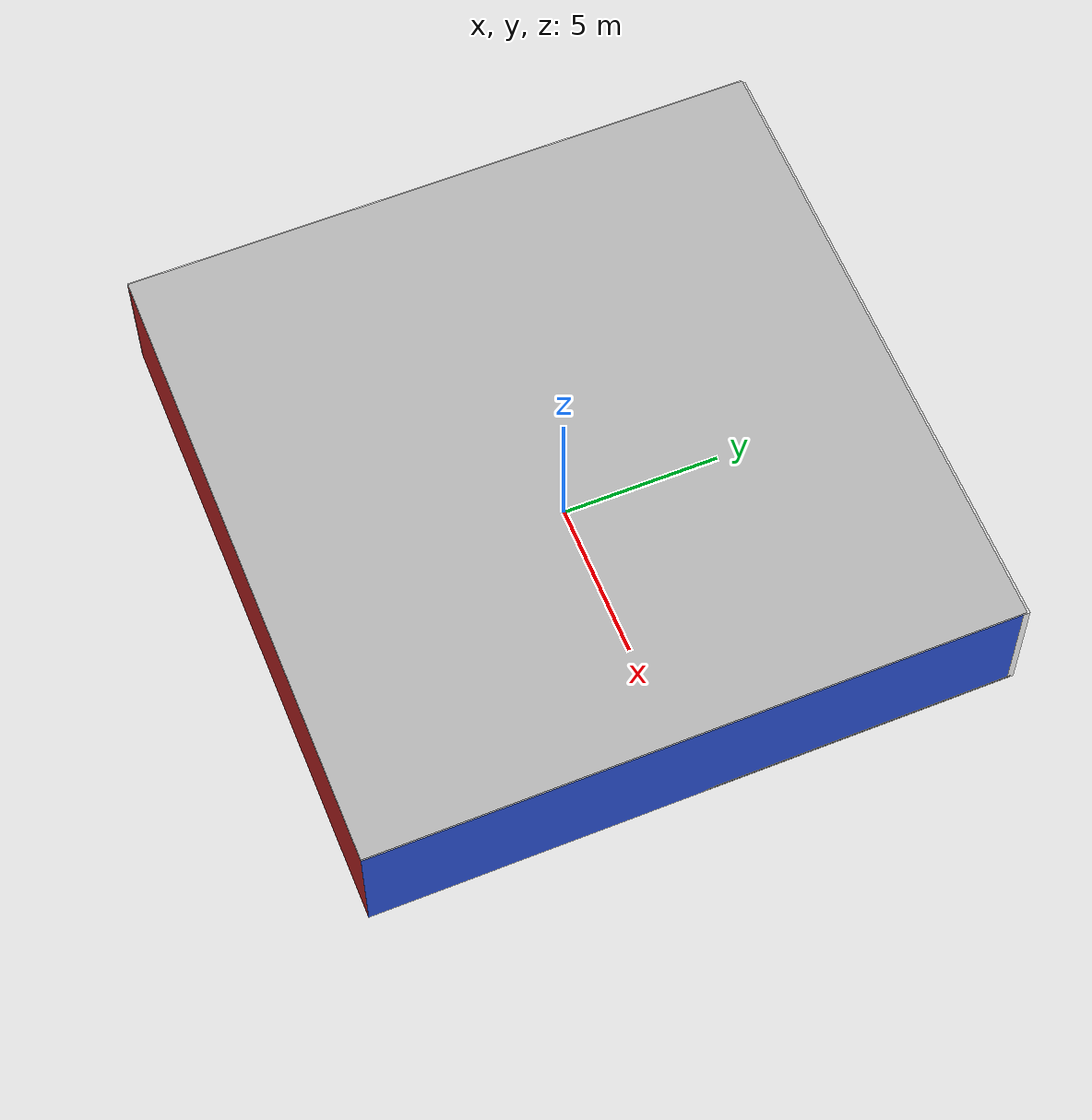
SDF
<sdf version="1.4">
 <world name="default">
  <physics type="ode">
   <max_step_size>0.001</max_step_size>
   <real_time_factor>1</real_time_factor>
   <real_time_update_rate>1000</real_time_update_rate>
   <gravity>0 0 -9.8</gravity>
  </physics>
  <scene><ambient>0.4 0.4 0.4 1</ambient><background>0.7 0.7 0.7 1</background><shadows>1</shadows></scene>
  <model name="Surrounding">
   <static>1</static>
   <link name="Ceiling">
    <collision name="Ceiling_Collision"><geometry><box><size>20 20 0.1</size></box></geometry></collision>
    <visual name="Ceiling_Visual">
     <geometry><box><size>20 20 0.1</size></box></geometry>
     <material>
      <script><uri>file://media/materials/scripts/gazebo.material</uri><name>Gazebo/Pioneer2Body</name></script>
     </material>
    </visual>
    <pose>0 0 4.05 0 0 0</pose>
   </link>
   <link name="Wall_South">
    <collision name="Wall_South_Collision">
     <geometry><box><size>20 0 4</size></box></geometry>
     <pose>0 0 2 0 -0 0</pose>
    </collision>
    <visual name="Wall_South_Visual">
     <pose>0 0 2 0 -0 0</pose>
     <geometry><box><size>20 0 4</size></box></geometry>
     <material>
      <script><uri>file://media/materials/scripts/gazebo.material</uri><name>Gazebo/RedGlow</name></script>
     </material>
    </visual>
    <velocity_decay><linear>0</linear><angular>0</angular></velocity_decay>
    <pose>0 -10 0 0 -0 0</pose>
   </link>
   <link name="Wall_East">
    <collision name="Wall_21_Collision">
     <geometry><box><size>20 0 4</size></box></geometry>
     <pose>0 0 2 0 -0 0</pose>
    </collision>
    <visual name="Wall_21_Visual">
     <pose>0 0 2 0 -0 0</pose>
     <geometry><box><size>20 0 4</size></box></geometry>
     <material>
      <script><uri>file://media/materials/scripts/gazebo.material</uri><name>Gazebo/Blue</name></script>
     </material>
    </visual>
    <velocity_decay><linear>0</linear><angular>0</angular></velocity_decay>
    <pose>10 0 0 0 -0 1.5708</pose>
   </link>
   <link name="Wall_North">
    <collision name="Wall_22_Collision">
     <geometry><box><size>20 0.2 4</size></box></geometry>
     <pose>0 0 2 0 -0 0</pose>
    </collision>
    <visual name="Wall_22_Visual">
     <pose>0 0 2 0 -0 0</pose>
     <geometry><box><size>20 0.2 4</size></box></geometry>
     <material>
      <script><uri>file://media/materials/scripts/gazebo.material</uri><name>Gazebo/WhiteGlow</name></script>
     </material>
    </visual>
    <velocity_decay><linear>0</linear><angular>0</angular></velocity_decay>
    <pose>0 10 0 0 -0 0</pose>
   </link>
   <link name="Wall_West">
    <collision name="Wall_23_Collision">
     <geometry><box><size>20 0.2 4</size></box></geometry>
     <pose>0 0 2 0 -0 0</pose>
    </collision>
    <visual name="Wall_23_Visual">
     <pose>0 0 2 0 -0 0</pose>
     <geometry><box><size>20 0.2 4</size></box></geometry>
     <material>
      <script><uri>file://media/materials/scripts/gazebo.material</uri><name>Gazebo/WhiteGlow</name></script>
     </material>
    </visual>
    <velocity_decay><linear>0</linear><angular>0</angular></velocity_decay>
    <pose>-10 0 0 0 0 -1.5708</pose>
   </link>
   <link name="Ground_link">
    <collision name="collision">
     <pose>0 0 .05 0 -0 0</pose>
     <geometry><box><size>20 20 0.1</size></box></geometry>
    </collision>
    <visual name="visual">
     <pose>0 0 .05 0 -0 0</pose>
     <geometry><box><size>20 20 0.1</size></box></geometry>
     <material>
      <script><uri>file://media/materials/scripts/gazebo.material</uri><name>Gazebo/FlatBlack</name></script>
     </material>
    </visual>
   </link>
   <static>1</static>
  </model>
  <spherical_coordinates>
   <surface_model>EARTH_WGS84</surface_model>
   <latitude_deg>0</latitude_deg>
   <longitude_deg>0</longitude_deg>
   <elevation>0</elevation>
   <heading_deg>0</heading_deg>
  </spherical_coordinates>
  <light name="lightball_0" type="diffuse">
   <diffuse>0.8 0.8 0.8 1</diffuse>
   <specular>0.2 0.2 0.2 1</specular>
   <attenuation>
    <range>100</range>
    <constant>0.7</constant>
    <linear>0.01</linear>
    <quadratic>0.001</quadratic>
   </attenuation>
   <direction>-0.5 0.1 -0.9</direction>
   <pose>1.59647423011 9.35692064862 3.89760356923 0 0 0</pose>
  </light>
  <light name="lightball_1" type="diffuse">
   <diffuse>0.8 0.8 0.8 1</diffuse>
   <specular>0.2 0.2 0.2 1</specular>
   <attenuation>
    <range>100</range>
    <constant>0.7</constant>
    <linear>0.01</linear>
    <quadratic>0.001</quadratic>
   </attenuation>
   <direction>-0.5 0.1 -0.9</direction>
   <pose>-6.578877243 -7.68998178136 1.42099982966 0 0 0</pose>
  </light>
  <light name="lightball_2" type="diffuse">
   <diffuse>0.8 0.8 0.8 1</diffuse>
   <specular>0.2 0.2 0.2 1</specular>
   <attenuation>
    <range>100</range>
    <constant>0.7</constant>
    <linear>0.01</linear>
    <quadratic>0.001</quadratic>
   </attenuation>
   <direction>-0.5 0.1 -0.9</direction>
   <pose>-5.44575222678 2.24243119048 3.02413220814 0 0 0</pose>
  </light>
  <light name="lightball_3" type="diffuse">
   <diffuse>0.8 0.8 0.8 1</diffuse>
   <specular>0.2 0.2 0.2 1</specular>
   <attenuation>
    <range>100</range>
    <constant>0.7</constant>
    <linear>0.01</linear>
    <quadratic>0.001</quadratic>
   </attenuation>
   <direction>-0.5 0.1 -0.9</direction>
   <pose>-9.17867653342 3.51947736398 1.54446070365 0 0 0</pose>
  </light>
  <light name="lightball_4" type="diffuse">
   <diffuse>0.8 0.8 0.8 1</diffuse>
   <specular>0.2 0.2 0.2 1</specular>
   <attenuation>
    <range>100</range>
    <constant>0.7</constant>
    <linear>0.01</linear>
    <quadratic>0.001</quadratic>
   </attenuation>
   <direction>-0.5 0.1 -0.9</direction>
   <pose>-5.75129906401 2.7726476824 2.002891033 0 0 0</pose>
  </light>
  <light name="lightball_5" type="diffuse">
   <diffuse>0.8 0.8 0.8 1</diffuse>
   <specular>0.2 0.2 0.2 1</specular>
   <attenuation>
    <range>100</range>
    <constant>0.7</constant>
    <linear>0.01</linear>
    <quadratic>0.001</quadratic>
   </attenuation>
   <direction>-0.5 0.1 -0.9</direction>
   <pose>-4.18728789877 2.61482872137 1.14112226709 0 0 0</pose>
  </light>
  <light name="lightball_6" type="diffuse">
   <diffuse>0.8 0.8 0.8 1</diffuse>
   <specular>0.2 0.2 0.2 1</specular>
   <attenuation>
    <range>100</range>
    <constant>0.7</constant>
    <linear>0.01</linear>
    <quadratic>0.001</quadratic>
   </attenuation>
   <direction>-0.5 0.1 -0.9</direction>
   <pose>1.37170431837 -3.3580925065 2.98329609587 0 0 0</pose>
  </light>
  <light name="lightball_7" type="diffuse">
   <diffuse>0.8 0.8 0.8 1</diffuse>
   <specular>0.2 0.2 0.2 1</specular>
   <attenuation>
    <range>100</range>
    <constant>0.7</constant>
    <linear>0.01</linear>
    <quadratic>0.001</quadratic>
   </attenuation>
   <direction>-0.5 0.1 -0.9</direction>
   <pose>0.477297066149 4.0093962366 3.16545986112 0 0 0</pose>
  </light>
  <light name="lightball_8" type="diffuse">
   <diffuse>0.8 0.8 0.8 1</diffuse>
   <specular>0.2 0.2 0.2 1</specular>
   <attenuation>
    <range>100</range>
    <constant>0.7</constant>
    <linear>0.01</linear>
    <quadratic>0.001</quadratic>
   </attenuation>
   <direction>-0.5 0.1 -0.9</direction>
   <pose>7.62324919057 -4.08757259093 2.70294640848 0 0 0</pose>
  </light>
  <light name="lightball_9" type="diffuse">
   <diffuse>0.8 0.8 0.8 1</diffuse>
   <specular>0.2 0.2 0.2 1</specular>
   <attenuation>
    <range>100</range>
    <constant>0.7</constant>
    <linear>0.01</linear>
    <quadratic>0.001</quadratic>
   </attenuation>
   <direction>-0.5 0.1 -0.9</direction>
   <pose>-5.44196765407 -0.559586517267 2.94289411072 0 0 0</pose>
  </light>
  <light name="lightball_10" type="diffuse">
   <diffuse>0.8 0.8 0.8 1</diffuse>
   <specular>0.2 0.2 0.2 1</specular>
   <attenuation>
    <range>100</range>
    <constant>0.7</constant>
    <linear>0.01</linear>
    <quadratic>0.001</quadratic>
   </attenuation>
   <direction>-0.5 0.1 -0.9</direction>
   <pose>-6.31181331412 -0.427705033662 2.40104528772 0 0 0</pose>
  </light>
  <light name="lightball_11" type="diffuse">
   <diffuse>0.8 0.8 0.8 1</diffuse>
   <specular>0.2 0.2 0.2 1</specular>
   <attenuation>
    <range>100</range>
    <constant>0.7</constant>
    <linear>0.01</linear>
    <quadratic>0.001</quadratic>
   </attenuation>
   <direction>-0.5 0.1 -0.9</direction>
   <pose>7.4154309991 6.04209246915 3.66169498447 0 0 0</pose>
  </light>
  <include>
   <uri>model://textured_shapes</uri>
   <pose>-6.91936867391 -4.48548935496 0 0 0 2.30419412998</pose>
  </include>
  <include><uri>model://table</uri><pose>-7.13420437726 7.89812365041 0 0 0 2.20750851144</pose></include>
  <include>
   <uri>model://construction_cone</uri>
   <pose>-4.68951778181 1.99215163913 0 0 0 1.51927296654</pose>
  </include>
  <include><uri>model://table</uri><pose>-3.52302143735 4.69128760385 0 0 0 0.285068492802</pose></include>
  <include>
   <uri>model://construction_cone</uri>
   <pose>-1.08932917976 2.24536943232 0 0 0 1.86615987037</pose>
  </include>
  <include>
   <uri>model://textured_shapes</uri>
   <pose>0.318949978954 -2.57849668398 0 0 0 0.759263723715</pose>
  </include>
  <include>
   <uri>model://construction_cone</uri>
   <pose>3.58947548762 -2.3080653803 0 0 0 2.39373517783</pose>
  </include>
  <include>
   <uri>model://textured_shapes</uri>
   <pose>3.41067859001 5.01825440891 0 0 0 0.0152165821515</pose>
  </include>
  <include>
   <uri>model://robocup_3Dsim_goal</uri>
   <pose>6.69725836694 1.35080463318 0 0 0 1.43100751726</pose>
  </include>
 </world>
</sdf>

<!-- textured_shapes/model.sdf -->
<sdf version="1.6">
  <model name="textured_shapes">
    <pose>0 0 0.5 0 0 0</pose>
    <link name="box">
      <pose>0 -1.5 0 0 0 0</pose>
      <collision name="collision">
        <geometry>
          <box>
            <size>1 1 1</size>
          </box>
        </geometry>
      </collision>
      <visual name="visual">
        <geometry>
          <box>
            <size>1 1 1</size>
          </box>
        </geometry>
        <material>
          <script>
            <uri>model://../model_source/models/textured_shapes/materials/scripts</uri>
            <uri>model://../model_source/models/textured_shapes/materials/textures</uri>
            <name>TexturedShape/Squares</name>
          </script>
        </material>
      </visual>
    </link>
    <link name="sphere">
      <collision name="collision">
        <geometry>
          <sphere>
            <radius>0.5</radius>
          </sphere>
        </geometry>
      </collision>
      <visual name="visual">
        <geometry>
          <sphere>
            <radius>0.5</radius>
          </sphere>
        </geometry>
        <material>
          <script>
            <uri>model://../model_source/models/textured_shapes/materials/scripts</uri>
            <uri>model://../model_source/models/textured_shapes/materials/textures</uri>
            <name>TexturedShape/Squares</name>
          </script>
        </material>
      </visual>
    </link>
    <link name="cylinder">
      <pose>0 1.5 0 0 0 0</pose>
      <collision name="collision">
        <geometry>
          <cylinder>
            <radius>0.5</radius>
            <length>1</length>
          </cylinder>
        </geometry>
      </collision>
      <visual name="visual">
        <geometry>
          <cylinder>
            <radius>0.5</radius>
            <length>1</length>
          </cylinder>
        </geometry>
        <material>
          <script>
            <uri>model://../model_source/models/textured_shapes/materials/scripts</uri>
            <uri>model://../model_source/models/textured_shapes/materials/textures</uri>
            <name>TexturedShape/Squares</name>
          </script>
        </material>
      </visual>
    </link>
  </model>
</sdf>

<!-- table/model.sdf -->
<sdf version="1.5">
  <model name="table">
    <static>true</static>
    <link name="link">
      <collision name="surface">
        <pose>0 0 1.0 0 0 0</pose>
        <geometry>
          <box>
            <size>1.5 0.8 0.03</size>
          </box>
        </geometry>
        <surface>
          <friction>
            <ode>
              <mu>0.6</mu>
              <mu2>0.6</mu2>
            </ode>
          </friction>
        </surface>
      </collision>
      <visual name="visual1">
        <pose>0 0 1.0 0 0 0</pose>
        <geometry>
          <box>
            <size>1.5 0.8 0.03</size>
          </box>
        </geometry>
        <material>
          <script>
            <uri>model://media/materials/scripts/gazebo.material</uri>
            <name>Gazebo/Wood</name>
          </script>
        </material>
      </visual>
      <collision name="front_left_leg">
        <pose>0.68 0.38 0.5 0 0 0</pose>
        <geometry>
          <cylinder>
            <radius>0.02</radius>
            <length>1.0</length>
          </cylinder>
        </geometry>
      </collision>
      <visual name="front_left_leg">
        <pose>0.68 0.38 0.5 0 0 0</pose>
        <geometry>
          <cylinder>
            <radius>0.02</radius>
            <length>1.0</length>
          </cylinder>
        </geometry>
        <material>
          <script>
            <uri>model://media/materials/scripts/gazebo.material</uri>
            <name>Gazebo/Grey</name>
          </script>
        </material>
      </visual>
      <collision name="front_right_leg">
        <pose>0.68 -0.38 0.5 0 0 0</pose>
        <geometry>
          <cylinder>
            <radius>0.02</radius>
            <length>1.0</length>
          </cylinder>
        </geometry>
      </collision>
      <visual name="front_right_leg">
        <pose>0.68 -0.38 0.5 0 0 0</pose>
        <geometry>
          <cylinder>
            <radius>0.02</radius>
            <length>1.0</length>
          </cylinder>
        </geometry>
        <material>
          <script>
            <uri>model://media/materials/scripts/gazebo.material</uri>
            <name>Gazebo/Grey</name>
          </script>
        </material>
      </visual>
      <collision name="back_right_leg">
        <pose>-0.68 -0.38 0.5 0 0 0</pose>
        <geometry>
          <cylinder>
            <radius>0.02</radius>
            <length>1.0</length>
          </cylinder>
        </geometry>
      </collision>
      <visual name="back_right_leg">
        <pose>-0.68 -0.38 0.5 0 0 0</pose>
        <geometry>
          <cylinder>
            <radius>0.02</radius>
            <length>1.0</length>
          </cylinder>
        </geometry>
        <material>
          <script>
            <uri>model://media/materials/scripts/gazebo.material</uri>
            <name>Gazebo/Grey</name>
          </script>
        </material>
      </visual>
      <collision name="back_left_leg">
        <pose>-0.68 0.38 0.5 0 0 0</pose>
        <geometry>
          <cylinder>
            <radius>0.02</radius>
            <length>1.0</length>
          </cylinder>
        </geometry>
      </collision>
      <visual name="back_left_leg">
        <pose>-0.68 0.38 0.5 0 0 0</pose>
        <geometry>
          <cylinder>
            <radius>0.02</radius>
            <length>1.0</length>
          </cylinder>
        </geometry>
        <material>
          <script>
            <uri>model://media/materials/scripts/gazebo.material</uri>
            <name>Gazebo/Grey</name>
          </script>
        </material>
      </visual>
    </link>
  </model>
</sdf>

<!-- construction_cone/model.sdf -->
<sdf version="1.5">
  <model name="Construction Cone">
    <link name="link">
      <collision name="collision">
        <geometry>
          <mesh>
            <scale>10 10 10</scale>
            <uri>file://isr-testbed/construction_cone/meshes/construction_cone.dae</uri>
          </mesh>
        </geometry>
      </collision>
      <visual name="visual">
        <geometry>
          <mesh>
            <scale>10 10 10</scale>
            <uri>file://isr-testbed/construction_cone/meshes/construction_cone.dae</uri>
          </mesh>
        </geometry>
      </visual>
    </link>
  </model>
</sdf>

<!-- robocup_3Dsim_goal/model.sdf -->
<sdf version="1.5">
  <model name="robocup_3d_goal">
    <static>true</static>
    <link name="left_post">
      <pose>0 1.05 0.45 0 0 0</pose>
      <collision name="collision">
        <geometry>
          <cylinder>
            <radius>0.05</radius>
            <length>0.9</length>
          </cylinder>
        </geometry>
      </collision>
      <visual name="visual">
        <geometry>
          <cylinder>
            <radius>0.05</radius>
            <length>0.9</length>
          </cylinder>
        </geometry>
        <material>
          <script>
            <uri>file://media/materials/scripts/gazebo.material</uri>
            <name>Gazebo/ZincYellow</name>
          </script>
        </material>
      </visual>
    </link>
    <link name="left_support_horiz_lower">
      <pose>0.30 1.05 0.01 0 0 0</pose>
      <collision name="collision">
        <geometry>
          <box>
            <size>0.50 0.02 0.02</size>
          </box>
        </geometry>
      </collision>
      <visual name="visual">
        <geometry>
          <box>
            <size>0.50 0.02 0.02</size>
          </box>
        </geometry>
        <material>
          <script>
            <uri>file://media/materials/scripts/gazebo.material</uri>
            <name>Gazebo/White</name>
          </script>
        </material>
      </visual>
    </link>
    <link name="left_support_horiz_upper">
      <pose>0.30 1.05 0.79 0 0 0</pose>
      <collision name="collision">
        <geometry>
          <box>
            <size>0.50 0.02 0.02</size>
          </box>
        </geometry>
      </collision>
      <visual name="visual">
        <geometry>
          <box>
            <size>0.50 0.02 0.02</size>
          </box>
        </geometry>
        <material>
          <script>
            <uri>file://media/materials/scripts/gazebo.material</uri>
            <name>Gazebo/White</name>
          </script>
        </material>
      </visual>
    </link>
    <link name="left_support_vertical">
      <pose>0.56 1.05 0.4 0 1.5708 0</pose>
      <collision name="collision">
        <geometry>
          <box>
            <size>0.80 0.02 0.02</size>
          </box>
        </geometry>
      </collision>
      <visual name="visual">
        <geometry>
          <box>
            <size>0.80 0.02 0.02</size>
          </box>
        </geometry>
        <material>
          <script>
            <uri>file://media/materials/scripts/gazebo.material</uri>
            <name>Gazebo/White</name>
          </script>
        </material>
      </visual>
    </link>
    <link name="right_support_horiz_lower">
      <pose>0.30 -1.05 0.01 0 0 0</pose>
      <collision name="collision">
        <geometry>
          <box>
            <size>0.50 0.02 0.02</size>
          </box>
        </geometry>
      </collision>
      <visual name="visual">
        <geometry>
          <box>
            <size>0.50 0.02 0.02</size>
          </box>
        </geometry>
        <material>
          <script>
            <uri>file://media/materials/scripts/gazebo.material</uri>
            <name>Gazebo/White</name>
          </script>
        </material>
      </visual>
    </link>
    <link name="right_support_horiz_upper">
      <pose>0.30 -1.05 0.79 0 0 0</pose>
      <collision name="collision">
        <geometry>
          <box>
            <size>0.50 0.02 0.02</size>
          </box>
        </geometry>
      </collision>
      <visual name="visual">
        <geometry>
          <box>
            <size>0.50 0.02 0.02</size>
          </box>
        </geometry>
        <material>
          <script>
            <uri>file://media/materials/scripts/gazebo.material</uri>
            <name>Gazebo/White</name>
          </script>
        </material>
      </visual>
    </link>
    <link name="right_support_vertical">
      <pose>0.56 -1.05 0.4 0 1.5708 0</pose>
      <collision name="collision">
        <geometry>
          <box>
            <size>0.80 0.02 0.02</size>
          </box>
        </geometry>
      </collision>
      <visual name="visual">
        <geometry>
          <box>
            <size>0.80 0.02 0.02</size>
          </box>
        </geometry>
        <material>
          <script>
            <uri>file://media/materials/scripts/gazebo.material</uri>
            <name>Gazebo/White</name>
          </script>
        </material>
      </visual>
    </link>
    <link name="center_support_horiz_lower">
      <pose>0.56 0 0.01 0 1.5708 0</pose>
      <collision name="collision">
        <geometry>
          <box>
            <size>0.02 2.08 0.02</size>
          </box>
        </geometry>
      </collision>
      <visual name="visual">
        <geometry>
          <box>
            <size>0.02 2.08 0.02</size>
          </box>
        </geometry>
        <material>
          <script>
            <uri>file://media/materials/scripts/gazebo.material</uri>
            <name>Gazebo/White</name>
          </script>
        </material>
      </visual>
    </link>
    <link name="center_support_horiz_upper">
      <pose>0.56 0 0.79 0 1.5708 0</pose>
      <collision name="collision">
        <geometry>
          <box>
            <size>0.02 2.08 0.02</size>
          </box>
        </geometry>
      </collision>
      <visual name="visual">
        <geometry>
          <box>
            <size>0.02 2.08 0.02</size>
          </box>
        </geometry>
        <material>
          <script>
            <uri>file://media/materials/scripts/gazebo.material</uri>
            <name>Gazebo/White</name>
          </script>
        </material>
      </visual>
    </link>
    <link name="right_post">
      <pose>0 -1.05 0.45 0 0 0</pose>
      <collision name="collision">
        <geometry>
          <cylinder>
            <radius>0.05</radius>
            <length>0.9</length>
          </cylinder>
        </geometry>
      </collision>
      <visual name="visual">
        <geometry>
          <cylinder>
            <radius>0.05</radius>
            <length>0.9</length>
          </cylinder>
        </geometry>
        <material>
          <script>
            <uri>file://media/materials/scripts/gazebo.material</uri>
            <name>Gazebo/ZincYellow</name>
          </script>
        </material>
      </visual>
    </link>
    <link name="crossbar">
      <pose>0 0 0.85 1.57 1.57 0</pose>
      <collision name="collision">
        <geometry>
          <cylinder>
            <radius>0.05</radius>
            <length>2.0</length>
          </cylinder>
        </geometry>
      </collision>
      <visual name="visual">
        <geometry>
          <cylinder>
            <radius>0.05</radius>
            <length>2.0</length>
          </cylinder>
        </geometry>
        <material>
          <script>
            <uri>file://media/materials/scripts/gazebo.material</uri>
            <name>Gazebo/ZincYellow</name>
          </script>
        </material>
      </visual>
    </link>
    <link name="center_net">
      <pose>0.56 0 0.40 0 0 0</pose>
      <collision name="collision">
        <geometry>
          <box>
            <size>0.01 2.1 0.80</size>
          </box>
        </geometry>
      </collision>
      <visual name="visual">
        <geometry>
          <box>
            <size>0.01 2.1 0.80</size>
          </box>
        </geometry>
        <material>
          <script>
            <uri>model://../model_source/models/robocup09_spl_field/materials/scripts/</uri>
            <uri>model://../model_source/models/robocup09_spl_field/materials/textures/</uri>
            <name>RoboCup/Net</name>
          </script>
        </material>
      </visual>
    </link>
    <link name="left_net">
      <pose>0.30 1.05 0.40 0 0 0</pose>
      <collision name="collision">
        <geometry>
          <box>
            <size>0.50 0.01 0.76</size>
          </box>
        </geometry>
      </collision>
      <visual name="visual">
        <geometry>
          <box>
            <size>0.50 0.01 0.76</size>
          </box>
        </geometry>
        <material>
          <script>
            <uri>model://../model_source/models/robocup09_spl_field/materials/scripts/</uri>
            <uri>model://../model_source/models/robocup09_spl_field/materials/textures/</uri>
            <name>RoboCup/Net</name>
          </script>
        </material>
      </visual>
    </link>
    <link name="right_net">
      <pose>0.30 -1.05 0.40 0 0 0</pose>
      <collision name="collision">
        <geometry>
          <box>
            <size>0.50 0.01 0.76</size>
          </box>
        </geometry>
      </collision>
      <visual name="visual">
        <geometry>
          <box>
            <size>0.50 0.01 0.76</size>
          </box>
        </geometry>
        <material>
          <script>
            <uri>model://../model_source/models/robocup09_spl_field/materials/scripts/</uri>
            <uri>model://../model_source/models/robocup09_spl_field/materials/textures/</uri>
            <name>RoboCup/Net</name>
          </script>
        </material>
      </visual>
    </link>
  </model>
</sdf>
